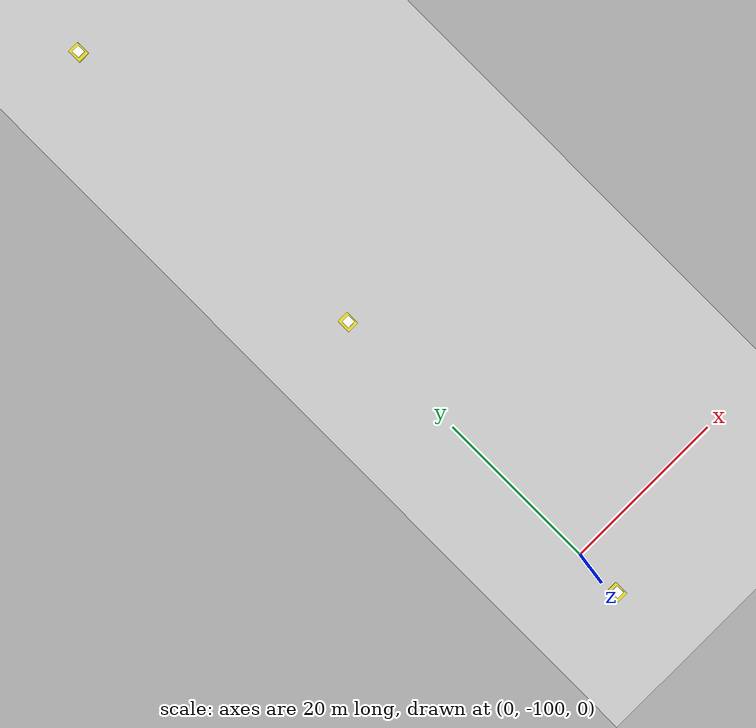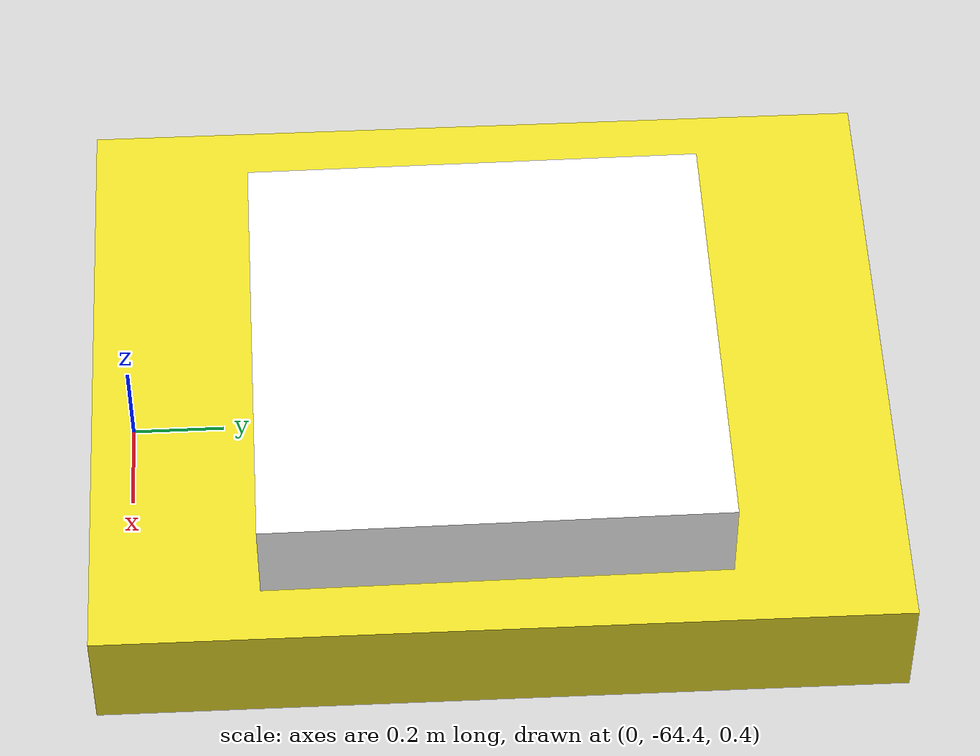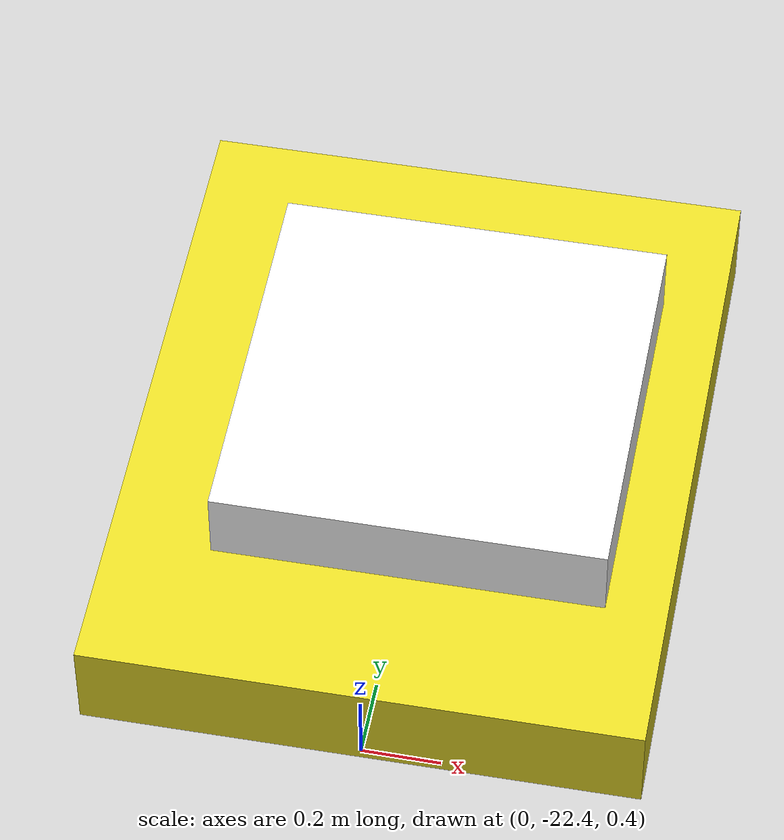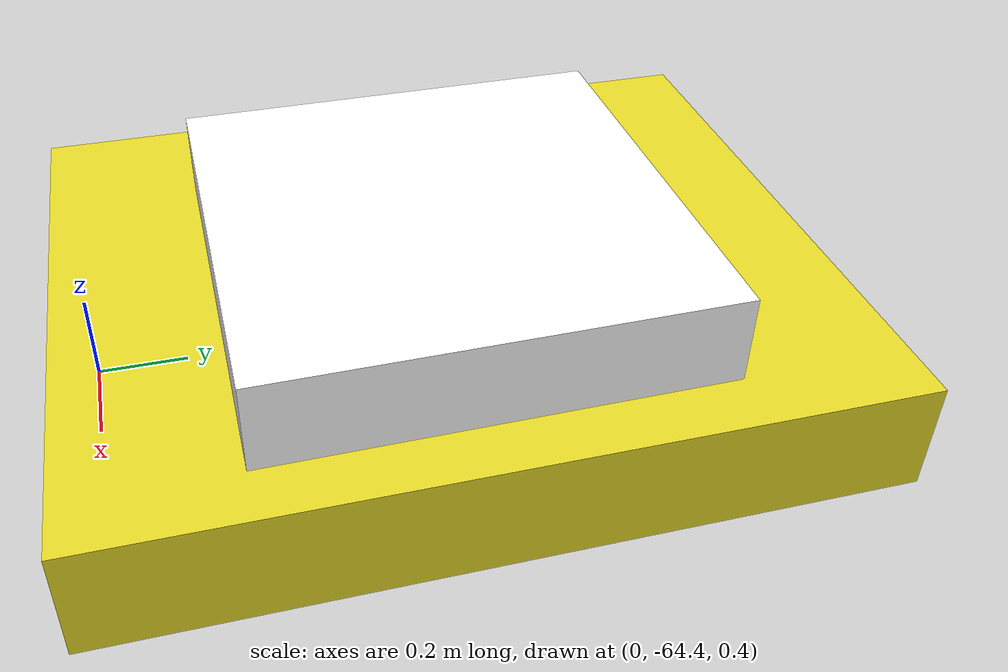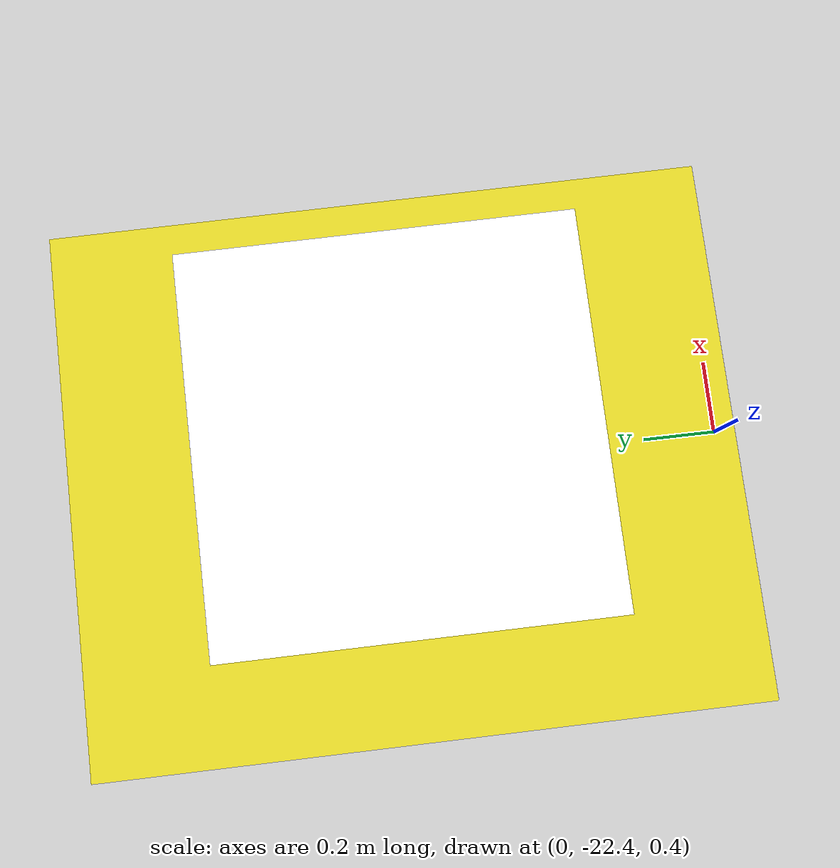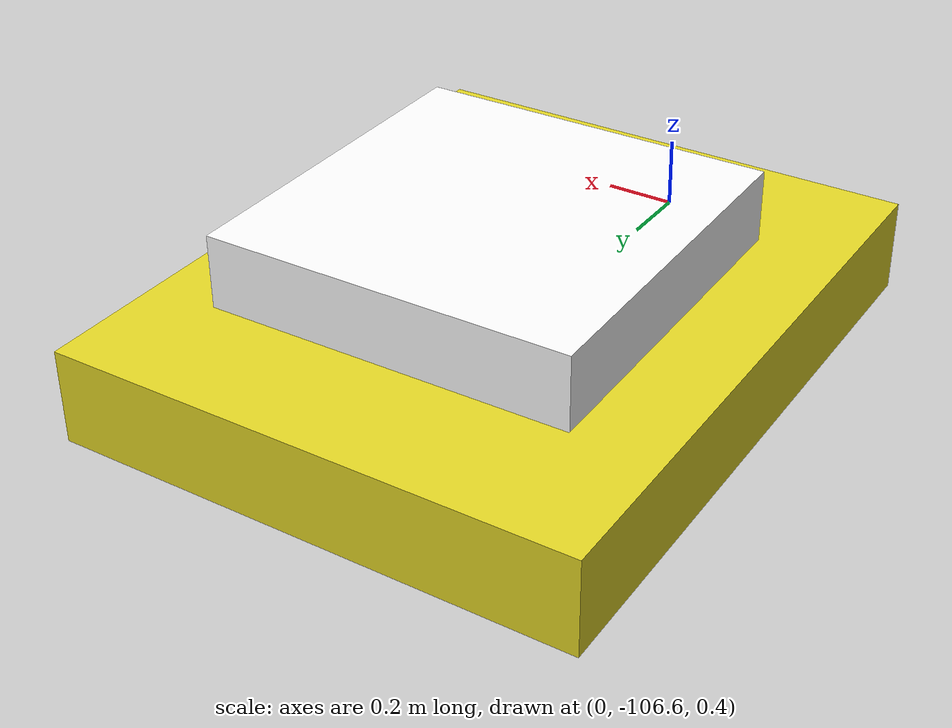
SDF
<sdf version="1.7">
 <world name="default">
  <light name="sun" type="directional">
   <pose>0 0 50 0 -0 0</pose>
   <diffuse>0.8 0.8 0.8 1</diffuse>
   <specular>0.2 0.2 0.2 1</specular>
   <attenuation>
    <range>1000</range>
    <constant>0.9</constant>
    <linear>0.01</linear>
    <quadratic>0.001</quadratic>
   </attenuation>
   <direction>-0.5 0.1 -0.9</direction>
   <spot><inner_angle>0</inner_angle><outer_angle>0</outer_angle><falloff>0</falloff></spot>
  </light>
  <model name="ground_plane">
   <static>1</static>
   <link name="link">
    <collision name="collision">
     <geometry><plane><normal>0 0 1</normal><size>100 100</size></plane></geometry>
     <surface>
      <contact><collide_bitmask>65535</collide_bitmask></contact>
      <friction><ode><mu>100</mu><mu2>50</mu2></ode></friction>
     </surface>
    </collision>
    <visual name="visual">
     <cast_shadows>0</cast_shadows>
     <geometry><plane><normal>0 0 1</normal><size>100 100</size></plane></geometry>
     <material>
      <script><uri>file://media/materials/scripts/gazebo.material</uri><name>Gazebo/Grey</name></script>
     </material>
    </visual>
   </link>
  </model>
  <physics name="default_physics" default="0" type="ode">
   <ode>
    <solver>
     <type>quick</type>
     <iters>10</iters>
     <sor>1.3</sor>
     <use_dynamic_moi_rescaling>0</use_dynamic_moi_rescaling>
    </solver>
    <constraints>
     <cfm>0</cfm>
     <erp>0.2</erp>
     <contact_max_correcting_vel>100</contact_max_correcting_vel>
     <contact_surface_layer>0.001</contact_surface_layer>
    </constraints>
   </ode>
   <max_step_size>0.004</max_step_size>
   <real_time_factor>1</real_time_factor>
   <real_time_update_rate>250</real_time_update_rate>
  </physics>
  <gravity>0 0 -9.8066</gravity>
  <magnetic_field>6e-06 2.3e-05 -4.2e-05</magnetic_field>
  <atmosphere type="adiabatic"/>
  <scene><ambient>0.4 0.4 0.4 1</ambient><background>0.7 0.7 0.7 1</background><shadows>1</shadows></scene>
  <spherical_coordinates>
   <surface_model>EARTH_WGS84</surface_model>
   <latitude_deg>0</latitude_deg>
   <longitude_deg>0</longitude_deg>
   <elevation>0</elevation>
   <heading_deg>0</heading_deg>
  </spherical_coordinates>
  <model name="aruco_marker1">
   <link name="marker">
    <visual name="visual">
     <geometry><box><size>1 0.2 1</size></box></geometry>
     <material>
      <script>
       <uri>model://aruco_marker1/materials/scripts</uri>
       <uri>model://aruco_marker1/materials/textures</uri>
       <name>arucomarker1/Marker</name>
      </script>
      <ambient>1 1 1 1</ambient>
      <diffuse>1 1 1 1</diffuse>
      <specular>0 0 0 1</specular>
      <emissive>1 1 1 0</emissive>
      <shader type="vertex"><normal_map>__default__</normal_map></shader>
     </material>
    </visual>
    <collision name="collision"><geometry><box><size>1 0.2 1</size></box></geometry></collision>
    <inertial>
     <inertia><ixx>1</ixx><ixy>0</ixy><ixz>0</ixz><iyy>1</iyy><iyz>0</iyz><izz>1</izz></inertia>
     <mass>1</mass>
    </inertial>
   </link>
   <pose>0.031917 -105.687 0.706674 1.57098 0.000173 -3.12891</pose>
  </model>
  <model name="aruco_marker2">
   <link name="marker">
    <visual name="visual">
     <geometry><box><size>1 0.2 1</size></box></geometry>
     <material>
      <script>
       <uri>model://aruco_marker2/materials/scripts</uri>
       <uri>model://aruco_marker2/materials/textures</uri>
       <name>arucomarker2/Marker</name>
      </script>
      <ambient>1 1 1 1</ambient>
      <diffuse>1 1 1 1</diffuse>
      <specular>0 0 0 1</specular>
      <emissive>1 1 1 0</emissive>
      <shader type="vertex"><normal_map>__default__</normal_map></shader>
     </material>
    </visual>
    <collision name="collision"><geometry><box><size>1 0.2 1</size></box></geometry></collision>
    <inertial>
     <inertia><ixx>1</ixx><ixy>0</ixy><ixz>0</ixz><iyy>1</iyy><iyz>0</iyz><izz>1</izz></inertia>
     <mass>1</mass>
    </inertial>
   </link>
   <pose>0.037284 -21.5096 0.706759 1.57105 6.8e-05 -3.13488</pose>
  </model>
  <model name="aruco_marker3">
   <link name="marker">
    <visual name="visual">
     <geometry><box><size>1 0.2 1</size></box></geometry>
     <material>
      <script>
       <uri>model://aruco_marker3/materials/scripts</uri>
       <uri>model://aruco_marker3/materials/textures</uri>
       <name>arucomarker3/Marker</name>
      </script>
      <ambient>1 1 1 1</ambient>
      <diffuse>1 1 1 1</diffuse>
      <specular>0 0 0 1</specular>
      <emissive>1 1 1 0</emissive>
      <shader type="vertex"><normal_map>__default__</normal_map></shader>
     </material>
    </visual>
    <collision name="collision"><geometry><box><size>1 0.2 1</size></box></geometry></collision>
    <inertial>
     <inertia><ixx>1</ixx><ixy>0</ixy><ixz>0</ixz><iyy>1</iyy><iyz>0</iyz><izz>1</izz></inertia>
     <mass>1</mass>
    </inertial>
   </link>
   <pose>0.09383 -63.6195 0.706708 1.57086 -1.1e-05 -3.1305</pose>
  </model>
  <model name="dock1">
   <pose>0.005582 -105.702 0.478337 -4.3e-05 4e-05 0.005312</pose>
   <link name="link">
    <inertial>
     <mass>1</mass>
     <inertia>
      <ixx>0.166667</ixx>
      <ixy>0</ixy>
      <ixz>0</ixz>
      <iyy>0.166667</iyy>
      <iyz>0</iyz>
      <izz>0.166667</izz>
     </inertia>
    </inertial>
    <collision name="collision"><geometry><box><size>1.42094 1.7371 0.256668</size></box></geometry></collision>
    <visual name="visual">
     <geometry><box><size>1.42094 1.7371 0.256668</size></box></geometry>
     <material>
      <script><name>Gazebo/Yellow</name><uri>file://media/materials/scripts/gazebo.material</uri></script>
     </material>
    </visual>
   </link>
  </model>
  <model name="dock2">
   <pose>0.010568 -63.6082 0.478377 -8.6e-05 7.4e-05 0.00341</pose>
   <link name="link">
    <inertial>
     <mass>1</mass>
     <inertia>
      <ixx>0.166667</ixx>
      <ixy>0</ixy>
      <ixz>0</ixz>
      <iyy>0.166667</iyy>
      <iyz>0</iyz>
      <izz>0.166667</izz>
     </inertia>
    </inertial>
    <collision name="collision"><geometry><box><size>1.42094 1.73711 0.256668</size></box></geometry></collision>
    <visual name="visual">
     <geometry><box><size>1.42094 1.73711 0.256668</size></box></geometry>
     <material>
      <script><name>Gazebo/Yellow</name><uri>file://media/materials/scripts/gazebo.material</uri></script>
     </material>
    </visual>
   </link>
  </model>
  <model name="dock3">
   <pose>-0.016931 -21.5171 0.478338 -5.7e-05 3.7e-05 0.007094</pose>
   <link name="link">
    <inertial>
     <mass>1</mass>
     <inertia>
      <ixx>0.166667</ixx>
      <ixy>0</ixy>
      <ixz>0</ixz>
      <iyy>0.166667</iyy>
      <iyz>0</iyz>
      <izz>0.166667</izz>
     </inertia>
    </inertial>
    <collision name="collision"><geometry><box><size>1.42094 1.73711 0.256668</size></box></geometry></collision>
    <visual name="visual">
     <geometry><box><size>1.42094 1.73711 0.256668</size></box></geometry>
     <material>
      <script><name>Gazebo/Yellow</name><uri>file://media/materials/scripts/gazebo.material</uri></script>
     </material>
    </visual>
   </link>
  </model>
 </world>
</sdf>
